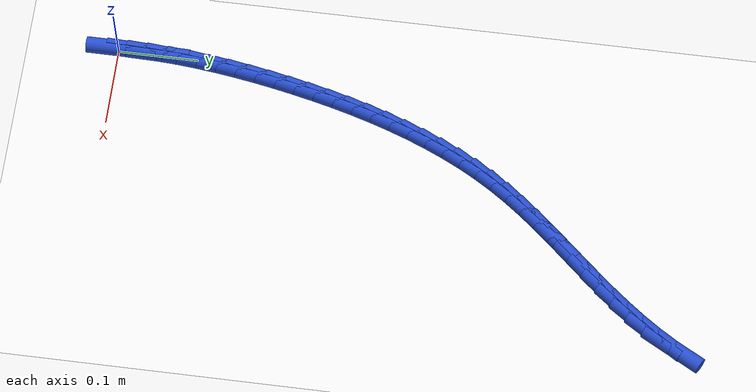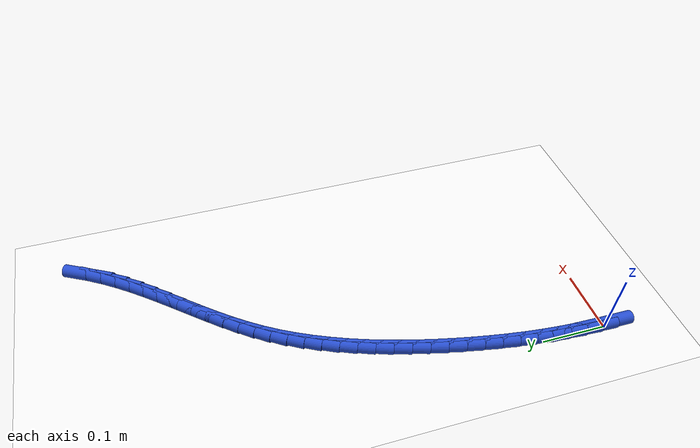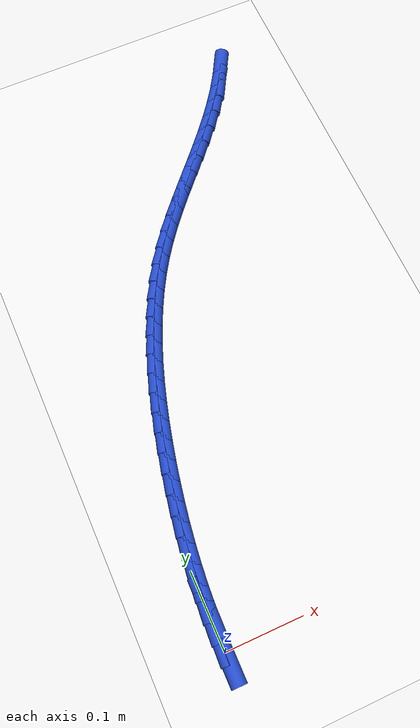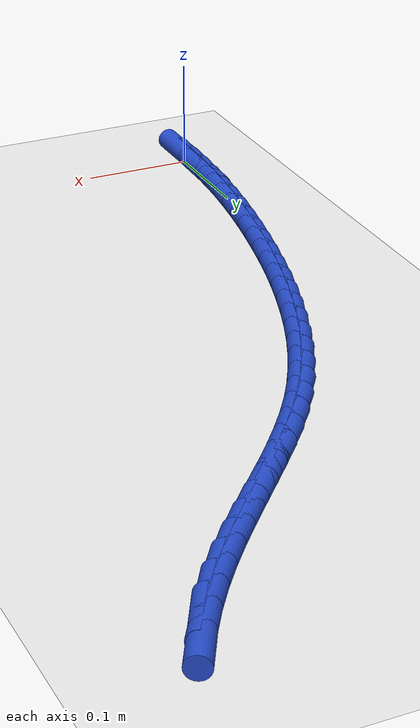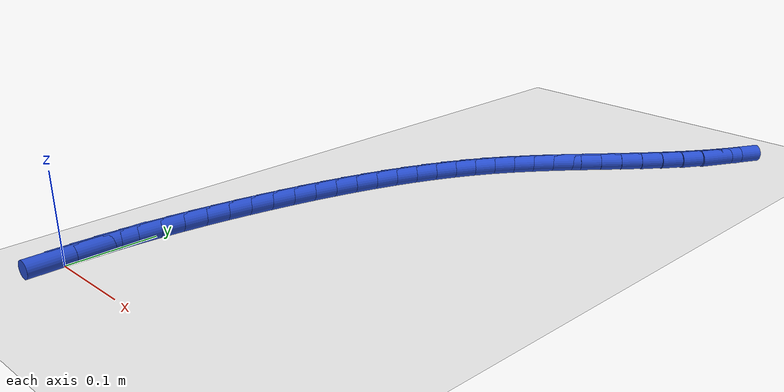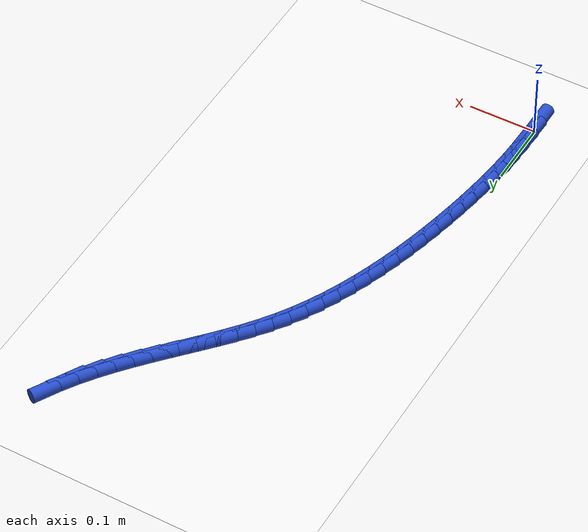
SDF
<sdf version="1.6">
 <world name="default">
  <model name="ground_plane">
   <static>1</static>
   <link name="link">
    <collision name="collision">
     <geometry><plane><normal>0 0 1</normal><size>100 100</size></plane></geometry>
     <surface><friction><ode><mu>100</mu><mu2>50</mu2></ode></friction></surface>
    </collision>
    <visual name="visual">
     <cast_shadows>0</cast_shadows>
     <geometry><plane><normal>0 0 1</normal><size>100 100</size></plane></geometry>
     <material>
      <script><uri>file://media/materials/scripts/gazebo.material</uri><name>Gazebo/WhiteGlow</name></script>
     </material>
    </visual>
   </link>
  </model>
  <model name="line">
   <link name="link_0">
    <pose>3.0357660829594124e-18 -5.551115123125783e-17 0.01 0 1.57 1.5662700191625272</pose>
    <collision name="collision">
     <geometry><cylinder><radius>0.01</radius><length>0.08</length></cylinder></geometry>
    </collision>
    <visual name="visual">
     <material>
      <script><name>Gazebo/Blue</name><uri>file://media/materials/scripts/gazebo.material</uri></script>
     </material>
     <geometry><cylinder><radius>0.01</radius><length>0.08</length></cylinder></geometry>
    </visual>
   </link>
   <link name="link_1">
    <pose>0.00011356239113108886 0.025089239357680544 0.01 0 1.57 1.5347855059834898</pose>
    <collision name="collision">
     <geometry><cylinder><radius>0.01</radius><length>0.08</length></cylinder></geometry>
    </collision>
    <visual name="visual">
     <material>
      <script><name>Gazebo/Blue</name><uri>file://media/materials/scripts/gazebo.material</uri></script>
     </material>
     <geometry><cylinder><radius>0.01</radius><length>0.08</length></cylinder></geometry>
    </visual>
   </link>
   <link name="link_2">
    <pose>0.0010207351785241198 0.050270021100066814 0.01 0 1.57 1.5051376449260008</pose>
    <collision name="collision">
     <geometry><cylinder><radius>0.01</radius><length>0.08</length></cylinder></geometry>
    </collision>
    <visual name="visual">
     <material>
      <script><name>Gazebo/Blue</name><uri>file://media/materials/scripts/gazebo.material</uri></script>
     </material>
     <geometry><cylinder><radius>0.01</radius><length>0.08</length></cylinder></geometry>
    </visual>
   </link>
   <link name="link_3">
    <pose>0.002681473748511457 0.07552717401087107 0.01 0 1.57 1.477293541972339</pose>
    <collision name="collision">
     <geometry><cylinder><radius>0.01</radius><length>0.08</length></cylinder></geometry>
    </collision>
    <visual name="visual">
     <material>
      <script><name>Gazebo/Blue</name><uri>file://media/materials/scripts/gazebo.material</uri></script>
     </material>
     <geometry><cylinder><radius>0.01</radius><length>0.08</length></cylinder></geometry>
    </visual>
   </link>
   <link name="link_4">
    <pose>0.0050557334874254635 0.10084552687380567 0.01 0 1.57 1.4512115327179123</pose>
    <collision name="collision">
     <geometry><cylinder><radius>0.01</radius><length>0.08</length></cylinder></geometry>
    </collision>
    <visual name="visual">
     <material>
      <script><name>Gazebo/Blue</name><uri>file://media/materials/scripts/gazebo.material</uri></script>
     </material>
     <geometry><cylinder><radius>0.01</radius><length>0.08</length></cylinder></geometry>
    </visual>
   </link>
   <link name="link_5">
    <pose>0.008103469781598503 0.12620990847258295 0.01 0 1.57 1.4268439266841488</pose>
    <collision name="collision">
     <geometry><cylinder><radius>0.01</radius><length>0.08</length></cylinder></geometry>
    </collision>
    <visual name="visual">
     <material>
      <script><name>Gazebo/Blue</name><uri>file://media/materials/scripts/gazebo.material</uri></script>
     </material>
     <geometry><cylinder><radius>0.01</radius><length>0.08</length></cylinder></geometry>
    </visual>
   </link>
   <link name="link_6">
    <pose>0.011784638017362948 0.15160514759091534 0.01 0 1.57 1.404139370585922</pose>
    <collision name="collision">
     <geometry><cylinder><radius>0.01</radius><length>0.08</length></cylinder></geometry>
    </collision>
    <visual name="visual">
     <material>
      <script><name>Gazebo/Blue</name><uri>file://media/materials/scripts/gazebo.material</uri></script>
     </material>
     <geometry><cylinder><radius>0.01</radius><length>0.08</length></cylinder></geometry>
    </visual>
   </link>
   <link name="link_7">
    <pose>0.016059193581051148 0.17701607301251507 0.01 0 1.57 1.3830448410429423</pose>
    <collision name="collision">
     <geometry><cylinder><radius>0.01</radius><length>0.08</length></cylinder></geometry>
    </collision>
    <visual name="visual">
     <material>
      <script><name>Gazebo/Blue</name><uri>file://media/materials/scripts/gazebo.material</uri></script>
     </material>
     <geometry><cylinder><radius>0.01</radius><length>0.08</length></cylinder></geometry>
    </visual>
   </link>
   <link name="link_8">
    <pose>0.020887091858995475 0.2024275135210945 0.01 0 1.57 1.363501683285036</pose>
    <collision name="collision">
     <geometry><cylinder><radius>0.01</radius><length>0.08</length></cylinder></geometry>
    </collision>
    <visual name="visual">
     <material>
      <script><name>Gazebo/Blue</name><uri>file://media/materials/scripts/gazebo.material</uri></script>
     </material>
     <geometry><cylinder><radius>0.01</radius><length>0.08</length></cylinder></geometry>
    </visual>
   </link>
   <link name="link_9">
    <pose>0.026228419726229763 0.22782421543325912 0.01 0 1.57 1.3443885876318216</pose>
    <collision name="collision">
     <geometry><cylinder><radius>0.01</radius><length>0.08</length></cylinder></geometry>
    </collision>
    <visual name="visual">
     <material>
      <script><name>Gazebo/Blue</name><uri>file://media/materials/scripts/gazebo.material</uri></script>
     </material>
     <geometry><cylinder><radius>0.01</radius><length>0.08</length></cylinder></geometry>
    </visual>
   </link>
   <link name="link_10">
    <pose>0.03206822150596183 0.2531752722488874 0.01 0 1.57 1.3233013821437325</pose>
    <collision name="collision">
     <geometry><cylinder><radius>0.01</radius><length>0.08</length></cylinder></geometry>
    </collision>
    <visual name="visual">
     <material>
      <script><name>Gazebo/Blue</name><uri>file://media/materials/scripts/gazebo.material</uri></script>
     </material>
     <geometry><cylinder><radius>0.01</radius><length>0.08</length></cylinder></geometry>
    </visual>
   </link>
   <link name="link_11">
    <pose>0.03844585578112786 0.27841571264090675 0.01 0 1.57 1.2998216217959722</pose>
    <collision name="collision">
     <geometry><cylinder><radius>0.01</radius><length>0.08</length></cylinder></geometry>
    </collision>
    <visual name="visual">
     <material>
      <script><name>Gazebo/Blue</name><uri>file://media/materials/scripts/gazebo.material</uri></script>
     </material>
     <geometry><cylinder><radius>0.01</radius><length>0.08</length></cylinder></geometry>
    </visual>
   </link>
   <link name="link_12">
    <pose>0.04540782260110202 0.30347608629606987 0.01 0 1.57 1.2738191148276392</pose>
    <collision name="collision">
     <geometry><cylinder><radius>0.01</radius><length>0.08</length></cylinder></geometry>
    </collision>
    <visual name="visual">
     <material>
      <script><name>Gazebo/Blue</name><uri>file://media/materials/scripts/gazebo.material</uri></script>
     </material>
     <geometry><cylinder><radius>0.01</radius><length>0.08</length></cylinder></geometry>
    </visual>
   </link>
   <link name="link_13">
    <pose>0.05300062201525856 0.3282869429011298 0.01 0 1.57 1.2451494826743204</pose>
    <collision name="collision">
     <geometry><cylinder><radius>0.01</radius><length>0.08</length></cylinder></geometry>
    </collision>
    <visual name="visual">
     <material>
      <script><name>Gazebo/Blue</name><uri>file://media/materials/scripts/gazebo.material</uri></script>
     </material>
     <geometry><cylinder><radius>0.01</radius><length>0.08</length></cylinder></geometry>
    </visual>
   </link>
   <link name="link_14">
    <pose>0.06127075407297165 0.3527788321428397 0.01 0 1.57 1.2136575063745054</pose>
    <collision name="collision">
     <geometry><cylinder><radius>0.01</radius><length>0.08</length></cylinder></geometry>
    </collision>
    <visual name="visual">
     <material>
      <script><name>Gazebo/Blue</name><uri>file://media/materials/scripts/gazebo.material</uri></script>
     </material>
     <geometry><cylinder><radius>0.01</radius><length>0.08</length></cylinder></geometry>
    </visual>
   </link>
   <link name="link_15">
    <pose>0.07026471882361549 0.3768823037079522 0.01 0 1.57 1.179181826876187</pose>
    <collision name="collision">
     <geometry><cylinder><radius>0.01</radius><length>0.08</length></cylinder></geometry>
    </collision>
    <visual name="visual">
     <material>
      <script><name>Gazebo/Blue</name><uri>file://media/materials/scripts/gazebo.material</uri></script>
     </material>
     <geometry><cylinder><radius>0.01</radius><length>0.08</length></cylinder></geometry>
    </visual>
   </link>
   <link name="link_16">
    <pose>0.08002901631656432 0.4005279072832208 0.01 0 1.57 1.1415614532896643</pose>
    <collision name="collision">
     <geometry><cylinder><radius>0.01</radius><length>0.08</length></cylinder></geometry>
    </collision>
    <visual name="visual">
     <material>
      <script><name>Gazebo/Blue</name><uri>file://media/materials/scripts/gazebo.material</uri></script>
     </material>
     <geometry><cylinder><radius>0.01</radius><length>0.08</length></cylinder></geometry>
    </visual>
   </link>
   <link name="link_17">
    <pose>0.0906101466011923 0.42364619255539804 0.01 0 1.57 1.1006445454075553</pose>
    <collision name="collision">
     <geometry><cylinder><radius>0.01</radius><length>0.08</length></cylinder></geometry>
    </collision>
    <visual name="visual">
     <material>
      <script><name>Gazebo/Blue</name><uri>file://media/materials/scripts/gazebo.material</uri></script>
     </material>
     <geometry><cylinder><radius>0.01</radius><length>0.08</length></cylinder></geometry>
    </visual>
   </link>
   <link name="link_18">
    <pose>0.10205460972687364 0.4461677092112369 0.01 0 1.57 1.0562998773934744</pose>
    <collision name="collision">
     <geometry><cylinder><radius>0.01</radius><length>0.08</length></cylinder></geometry>
    </collision>
    <visual name="visual">
     <material>
      <script><name>Gazebo/Blue</name><uri>file://media/materials/scripts/gazebo.material</uri></script>
     </material>
     <geometry><cylinder><radius>0.01</radius><length>0.08</length></cylinder></geometry>
    </visual>
   </link>
   <link name="link_19">
    <pose>0.11440890574298257 0.4680230069374907 0.01 0 1.57 1.0084312079287099</pose>
    <collision name="collision">
     <geometry><cylinder><radius>0.01</radius><length>0.08</length></cylinder></geometry>
    </collision>
    <visual name="visual">
     <material>
      <script><name>Gazebo/Blue</name><uri>file://media/materials/scripts/gazebo.material</uri></script>
     </material>
     <geometry><cylinder><radius>0.01</radius><length>0.08</length></cylinder></geometry>
    </visual>
   </link>
   <link name="link_20">
    <pose>0.12771953469889322 0.489142635420912 0.01 0 1.57 0.9582909669125129</pose>
    <collision name="collision">
     <geometry><cylinder><radius>0.01</radius><length>0.08</length></cylinder></geometry>
    </collision>
    <visual name="visual">
     <material>
      <script><name>Gazebo/Blue</name><uri>file://media/materials/scripts/gazebo.material</uri></script>
     </material>
     <geometry><cylinder><radius>0.01</radius><length>0.08</length></cylinder></geometry>
    </visual>
   </link>
   <link name="link_21">
    <pose>0.14201038994826592 0.5094810137284753 0.01 0 1.57 0.9143157773765004</pose>
    <collision name="collision">
     <geometry><cylinder><radius>0.01</radius><length>0.08</length></cylinder></geometry>
    </collision>
    <visual name="visual">
     <material>
      <script><name>Gazebo/Blue</name><uri>file://media/materials/scripts/gazebo.material</uri></script>
     </material>
     <geometry><cylinder><radius>0.01</radius><length>0.08</length></cylinder></geometry>
    </visual>
   </link>
   <link name="link_22">
    <pose>0.15716105924483434 0.5291449266366892 0.01 0 1.57 0.8800797077235053</pose>
    <collision name="collision">
     <geometry><cylinder><radius>0.01</radius><length>0.08</length></cylinder></geometry>
    </collision>
    <visual name="visual">
     <material>
      <script><name>Gazebo/Blue</name><uri>file://media/materials/scripts/gazebo.material</uri></script>
     </material>
     <geometry><cylinder><radius>0.01</radius><length>0.08</length></cylinder></geometry>
    </visual>
   </link>
   <link name="link_23">
    <pose>0.17299439910585873 0.5483010588504262 0.01 0 1.57 0.855727843662233</pose>
    <collision name="collision">
     <geometry><cylinder><radius>0.01</radius><length>0.08</length></cylinder></geometry>
    </collision>
    <visual name="visual">
     <material>
      <script><name>Gazebo/Blue</name><uri>file://media/materials/scripts/gazebo.material</uri></script>
     </material>
     <geometry><cylinder><radius>0.01</radius><length>0.08</length></cylinder></geometry>
    </visual>
   </link>
   <link name="link_24">
    <pose>0.18933313061972137 0.5671162380677419 0.01 0 1.57 0.8412541116425264</pose>
    <collision name="collision">
     <geometry><cylinder><radius>0.01</radius><length>0.08</length></cylinder></geometry>
    </collision>
    <visual name="visual">
     <material>
      <script><name>Gazebo/Blue</name><uri>file://media/materials/scripts/gazebo.material</uri></script>
     </material>
     <geometry><cylinder><radius>0.01</radius><length>0.08</length></cylinder></geometry>
    </visual>
   </link>
   <link name="link_25">
    <pose>0.20599997487480448 0.5857572919866918 0.01 0 1.57 0.83658063768396</pose>
    <collision name="collision">
     <geometry><cylinder><radius>0.01</radius><length>0.08</length></cylinder></geometry>
    </collision>
    <visual name="visual">
     <material>
      <script><name>Gazebo/Blue</name><uri>file://media/materials/scripts/gazebo.material</uri></script>
     </material>
     <geometry><cylinder><radius>0.01</radius><length>0.08</length></cylinder></geometry>
    </visual>
   </link>
   <link name="link_26">
    <pose>0.22281765295949033 0.6043910483053317 0.01 0 1.57 0.8416008328042557</pose>
    <collision name="collision">
     <geometry><cylinder><radius>0.01</radius><length>0.08</length></cylinder></geometry>
    </collision>
    <visual name="visual">
     <material>
      <script><name>Gazebo/Blue</name><uri>file://media/materials/scripts/gazebo.material</uri></script>
     </material>
     <geometry><cylinder><radius>0.01</radius><length>0.08</length></cylinder></geometry>
    </visual>
   </link>
   <link name="link_27">
    <pose>0.23960888596216107 0.623184334721717 0.01 0 1.57 0.8561935982739316</pose>
    <collision name="collision">
     <geometry><cylinder><radius>0.01</radius><length>0.08</length></cylinder></geometry>
    </collision>
    <visual name="visual">
     <material>
      <script><name>Gazebo/Blue</name><uri>file://media/materials/scripts/gazebo.material</uri></script>
     </material>
     <geometry><cylinder><radius>0.01</radius><length>0.08</length></cylinder></geometry>
    </visual>
   </link>
   <link name="link_28">
    <pose>0.256196394971199 0.6423039789339033 0.01 0 1.57 0.8802103791430471</pose>
    <collision name="collision">
     <geometry><cylinder><radius>0.01</radius><length>0.08</length></cylinder></geometry>
    </collision>
    <visual name="visual">
     <material>
      <script><name>Gazebo/Blue</name><uri>file://media/materials/scripts/gazebo.material</uri></script>
     </material>
     <geometry><cylinder><radius>0.01</radius><length>0.08</length></cylinder></geometry>
    </visual>
   </link>
   <link name="link_29">
    <pose>0.27240290107498655 0.6619168086399465 0.01 0 1.57 0.9134377540114774</pose>
    <collision name="collision">
     <geometry><cylinder><radius>0.01</radius><length>0.08</length></cylinder></geometry>
    </collision>
    <visual name="visual">
     <material>
      <script><name>Gazebo/Blue</name><uri>file://media/materials/scripts/gazebo.material</uri></script>
     </material>
     <geometry><cylinder><radius>0.01</radius><length>0.08</length></cylinder></geometry>
    </visual>
   </link>
   <link name="link_30">
    <pose>0.28805112536190564 0.6821896515379018 0.01 0 1.57 0.9555399088143963</pose>
    <collision name="collision">
     <geometry><cylinder><radius>0.01</radius><length>0.08</length></cylinder></geometry>
    </collision>
    <visual name="visual">
     <material>
      <script><name>Gazebo/Blue</name><uri>file://media/materials/scripts/gazebo.material</uri></script>
     </material>
     <geometry><cylinder><radius>0.01</radius><length>0.08</length></cylinder></geometry>
    </visual>
   </link>
   <link name="link_31">
    <pose>0.3029637889203389 0.7032893353258255 0.01 0 1.57 1.005988966866133</pose>
    <collision name="collision">
     <geometry><cylinder><radius>0.01</radius><length>0.08</length></cylinder></geometry>
    </collision>
    <visual name="visual">
     <material>
      <script><name>Gazebo/Blue</name><uri>file://media/materials/scripts/gazebo.material</uri></script>
     </material>
     <geometry><cylinder><radius>0.01</radius><length>0.08</length></cylinder></geometry>
    </visual>
   </link>
   <link name="link_32">
    <pose>0.3169636128386682 0.7253826877017722 0.01 0 1.57 1.0639968913932731</pose>
    <collision name="collision">
     <geometry><cylinder><radius>0.01</radius><length>0.08</length></cylinder></geometry>
    </collision>
    <visual name="visual">
     <material>
      <script><name>Gazebo/Blue</name><uri>file://media/materials/scripts/gazebo.material</uri></script>
     </material>
     <geometry><cylinder><radius>0.01</radius><length>0.08</length></cylinder></geometry>
    </visual>
   </link>
   <link name="link_281">
    <pose>0.00013458600046466554 0.02510137817648563 0.01 0 1.57 1.5290905969818527</pose>
    <collision name="collision">
     <geometry><cylinder><radius>0.01</radius><length>0.08</length></cylinder></geometry>
    </collision>
    <visual name="visual">
     <material>
      <script><name>Gazebo/Blue</name><uri>file://media/materials/scripts/gazebo.material</uri></script>
     </material>
     <geometry><cylinder><radius>0.01</radius><length>0.08</length></cylinder></geometry>
    </visual>
   </link>
   <link name="link_282">
    <pose>0.0011889240531926422 0.050367131650509336 0.01 0 1.57 1.5471955525628591</pose>
    <collision name="collision">
     <geometry><cylinder><radius>0.01</radius><length>0.08</length></cylinder></geometry>
    </collision>
    <visual name="visual">
     <material>
      <script><name>Gazebo/Blue</name><uri>file://media/materials/scripts/gazebo.material</uri></script>
     </material>
     <geometry><cylinder><radius>0.01</radius><length>0.08</length></cylinder></geometry>
    </visual>
   </link>
  </model>
 </world>
</sdf>
